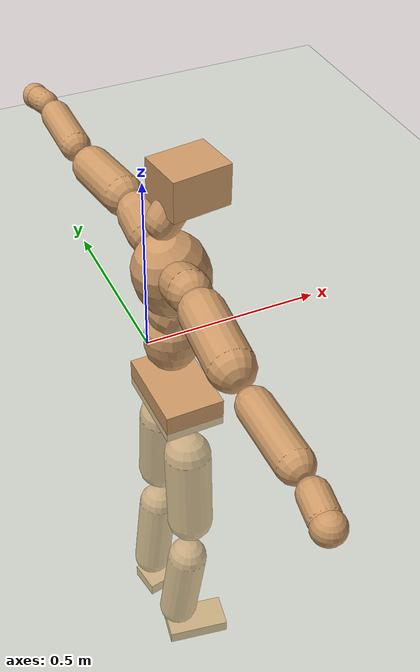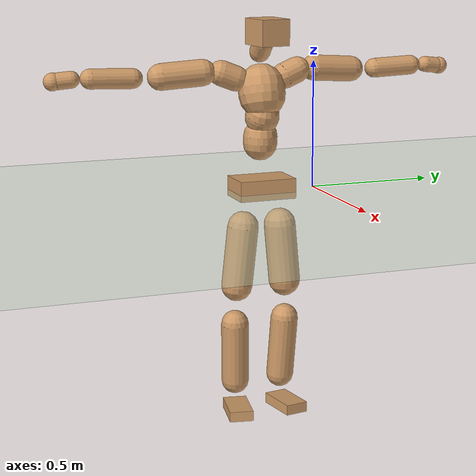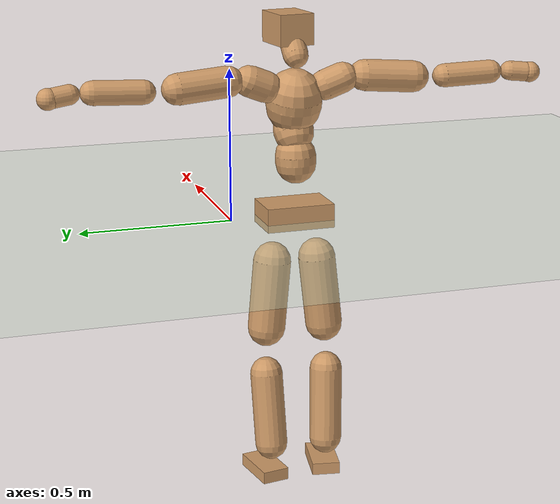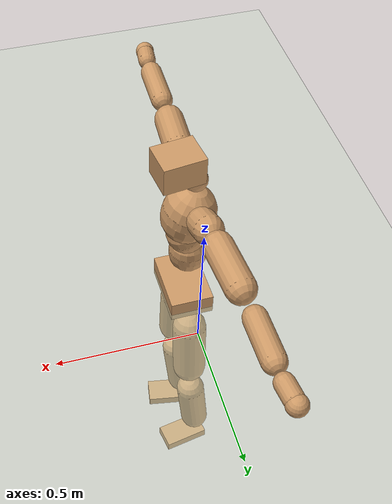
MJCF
<mujoco model="humanoid">
  <compiler coordinate="local" angle="radian"/>
  <default>
    <joint damping="0.0" armature="0.01" stiffness="0.0" limited="true"/>
    <geom conaffinity="1" condim="3" contype="7" margin="0.001" rgba="0.8 0.6 .4 1"/>
  </default>
  <asset>
    <texture type="skybox" builtin="gradient" rgb1=".4 .5 .6" rgb2="0 0 0" width="100" height="100"/>
    <texture builtin="flat" height="1278" mark="cross" markrgb="1 1 1" name="texgeom" random="0.01" rgb1="0.8 0.6 0.4" rgb2="0.8 0.6 0.4" type="cube" width="127"/>
    <texture builtin="checker" height="100" name="texplane" rgb1="0 0 0" rgb2="0.8 0.8 0.8" type="2d" width="100"/>
    <material name="MatPlane" reflectance="0.5" shininess="1" specular="1" texrepeat="60 60" texture="texplane"/>
    <material name="geom" texture="texgeom" texuniform="true"/>
  </asset>
  <worldbody>
    <light cutoff="100" diffuse="1 1 1" dir="-0 0 -1.3" directional="true" exponent="1" pos="0 0 1.3" specular=".1 .1 .1"/>
    <geom conaffinity="1" condim="3" name="floor" pos="0 0 0" rgba="0.8 0.9 0.8 1" size="100 100 .2" type="plane" material="MatPlane"/>
    <body name="Pelvis" pos="-0.0013 -0.2121 0.025">
      <freejoint name="Pelvis"/>
      <geom type="box" contype="1" conaffinity="1" density="500" pos="-0.0067 -0.0001 -0.0125" size="0.0765 0.1137 0.0396" quat="1.0000 0.0000 0.0000 0.0067" name="Pelvis"/>
      <body name="L_Hip" pos="-0.0126 0.0715 -0.0904">
        <joint name="L_Hip_x" type="hinge" pos="0 0 0" axis="1 0 0" stiffness="800" damping="80" armature="0.02" range="-180.0000 180.0000"/>
        <joint name="L_Hip_y" type="hinge" pos="0 0 0" axis="0 1 0" stiffness="800" damping="80" armature="0.02" range="-180.0000 180.0000"/>
        <joint name="L_Hip_z" type="hinge" pos="0 0 0" axis="0 0 1" stiffness="800" damping="80" armature="0.02" range="-180.0000 180.0000"/>
        <geom type="capsule" contype="1" conaffinity="1" density="500" fromto="-0.0003 0.0071 -0.0775 -0.0010 0.0285 -0.3102" size="0.0626" name="L_Hip"/>
        <body name="L_Knee" pos="-0.0013 0.0356 -0.3877">
          <joint name="L_Knee_x" type="hinge" pos="0 0 0" axis="1 0 0" stiffness="800" damping="80" armature="0.02" range="-180.0000 180.0000"/>
          <joint name="L_Knee_y" type="hinge" pos="0 0 0" axis="0 1 0" stiffness="800" damping="80" armature="0.02" range="-180.0000 180.0000"/>
          <joint name="L_Knee_z" type="hinge" pos="0 0 0" axis="0 0 1" stiffness="800" damping="80" armature="0.02" range="-180.0000 180.0000"/>
          <geom type="capsule" contype="1" conaffinity="1" density="500" fromto="-0.0091 -0.0027 -0.0822 -0.0365 -0.0106 -0.3287" size="0.0544" name="L_Knee"/>
          <body name="L_Ankle" pos="-0.0457 -0.0133 -0.4108">
            <joint name="L_Ankle_x" type="hinge" pos="0 0 0" axis="1 0 0" stiffness="800" damping="80" armature="0.02" range="-180.0000 180.0000"/>
            <joint name="L_Ankle_y" type="hinge" pos="0 0 0" axis="0 1 0" stiffness="800" damping="80" armature="0.02" range="-180.0000 180.0000"/>
            <joint name="L_Ankle_z" type="hinge" pos="0 0 0" axis="0 0 1" stiffness="800" damping="80" armature="0.02" range="-180.0000 180.0000"/>
            <geom type="box" contype="1" conaffinity="1" density="500" pos="0.0606 0.0104 -0.0287" size="0.0866 0.0459 0.0206" quat="0.9964 0.0000 0.0000 0.0851" name="L_Ankle"/>
            <body name="L_Toe" pos="0.1212 0.0208 -0.0575">
              <joint name="L_Toe_x" type="hinge" pos="0 0 0" axis="1 0 0" stiffness="500" damping="50" armature="0.02" range="-180.0000 180.0000"/>
              <joint name="L_Toe_y" type="hinge" pos="0 0 0" axis="0 1 0" stiffness="500" damping="50" armature="0.02" range="-180.0000 180.0000"/>
              <joint name="L_Toe_z" type="hinge" pos="0 0 0" axis="0 0 1" stiffness="500" damping="50" armature="0.02" range="-180.0000 180.0000"/>
              <geom type="box" contype="1" conaffinity="1" density="500" pos="0.0000 0.0000 0.0283" size="0.001 0.0023 0.001" quat="0.9958 0.0000 0.0000 0.0915" name="L_Toe"/>
            </body>
          </body>
        </body>
      </body>
      <body name="R_Hip" pos="-0.0088 -0.0689 -0.0891">
        <joint name="R_Hip_x" type="hinge" pos="0 0 0" axis="1 0 0" stiffness="800" damping="80" armature="0.02" range="-180.0000 180.0000"/>
        <joint name="R_Hip_y" type="hinge" pos="0 0 0" axis="0 1 0" stiffness="800" damping="80" armature="0.02" range="-180.0000 180.0000"/>
        <joint name="R_Hip_z" type="hinge" pos="0 0 0" axis="0 0 1" stiffness="800" damping="80" armature="0.02" range="-180.0000 180.0000"/>
        <geom type="capsule" contype="1" conaffinity="1" density="500" fromto="-0.0010 -0.0084 -0.0790 -0.0038 -0.0334 -0.3160" size="0.0618" name="R_Hip"/>
        <body name="R_Knee" pos="-0.0048 -0.0418 -0.395">
          <joint name="R_Knee_x" type="hinge" pos="0 0 0" axis="1 0 0" stiffness="800" damping="80" armature="0.02" range="-180.0000 180.0000"/>
          <joint name="R_Knee_y" type="hinge" pos="0 0 0" axis="0 1 0" stiffness="800" damping="80" armature="0.02" range="-180.0000 180.0000"/>
          <joint name="R_Knee_z" type="hinge" pos="0 0 0" axis="0 0 1" stiffness="800" damping="80" armature="0.02" range="-180.0000 180.0000"/>
          <geom type="capsule" contype="1" conaffinity="1" density="500" fromto="-0.0086 0.0031 -0.0819 -0.0345 0.0125 -0.3274" size="0.0547" name="R_Knee"/>
          <body name="R_Ankle" pos="-0.0431 0.0156 -0.4093">
            <joint name="R_Ankle_x" type="hinge" pos="0 0 0" axis="1 0 0" stiffness="800" damping="80" armature="0.02" range="-180.0000 180.0000"/>
            <joint name="R_Ankle_y" type="hinge" pos="0 0 0" axis="0 1 0" stiffness="800" damping="80" armature="0.02" range="-180.0000 180.0000"/>
            <joint name="R_Ankle_z" type="hinge" pos="0 0 0" axis="0 0 1" stiffness="800" damping="80" armature="0.02" range="-180.0000 180.0000"/>
            <geom type="box" contype="1" conaffinity="1" density="500" pos="0.0624 -0.0104 -0.0247" size="0.0875 0.047 0.0204" quat="0.9966 0.0000 0.0000 -0.0829" name="R_Ankle"/>
            <body name="R_Toe" pos="0.1247 -0.0209 -0.0494">
              <joint name="R_Toe_x" type="hinge" pos="0 0 0" axis="1 0 0" stiffness="500" damping="50" armature="0.02" range="-180.0000 180.0000"/>
              <joint name="R_Toe_y" type="hinge" pos="0 0 0" axis="0 1 0" stiffness="500" damping="50" armature="0.02" range="-180.0000 180.0000"/>
              <joint name="R_Toe_z" type="hinge" pos="0 0 0" axis="0 0 1" stiffness="500" damping="50" armature="0.02" range="-180.0000 180.0000"/>
              <geom type="box" contype="1" conaffinity="1" density="500" pos="0.0000 0.0000 0.0270" size="0.0009 0.0023 0.0011" quat="0.9973 0.0000 0.0000 -0.0740" name="R_Toe"/>
            </body>
          </body>
        </body>
      </body>
      <body name="Torso" pos="-0.019 -0.0032 0.1047">
        <joint name="Torso_x" type="hinge" pos="0 0 0" axis="1 0 0" stiffness="1000" damping="100" armature="0.02" range="-180.0000 180.0000"/>
        <joint name="Torso_y" type="hinge" pos="0 0 0" axis="0 1 0" stiffness="1000" damping="100" armature="0.02" range="-180.0000 180.0000"/>
        <joint name="Torso_z" type="hinge" pos="0 0 0" axis="0 0 1" stiffness="1000" damping="100" armature="0.02" range="-180.0000 180.0000"/>
        <geom type="capsule" contype="1" conaffinity="1" density="500" fromto="-0.0008 0.0025 0.0815 -0.0006 0.0016 0.0543" size="0.0667" name="Torso"/>
        <body name="Spine" pos="-0.0014 0.0041 0.1358">
          <joint name="Spine_x" type="hinge" pos="0 0 0" axis="1 0 0" stiffness="1000" damping="100" armature="0.02" range="-180.0000 180.0000"/>
          <joint name="Spine_y" type="hinge" pos="0 0 0" axis="0 1 0" stiffness="1000" damping="100" armature="0.02" range="-180.0000 180.0000"/>
          <joint name="Spine_z" type="hinge" pos="0 0 0" axis="0 0 1" stiffness="1000" damping="100" armature="0.02" range="-180.0000 180.0000"/>
          <geom type="capsule" contype="1" conaffinity="1" density="500" fromto="0.0154 0.0015 0.0293 0.0103 0.0010 0.0195" size="0.0661" name="Spine"/>
          <body name="Chest" pos="0.0257 0.0024 0.0488">
            <joint name="Chest_x" type="hinge" pos="0 0 0" axis="1 0 0" stiffness="1000" damping="100" armature="0.02" range="-180.0000 180.0000"/>
            <joint name="Chest_y" type="hinge" pos="0 0 0" axis="0 1 0" stiffness="1000" damping="100" armature="0.02" range="-180.0000 180.0000"/>
            <joint name="Chest_z" type="hinge" pos="0 0 0" axis="0 0 1" stiffness="1000" damping="100" armature="0.02" range="-180.0000 180.0000"/>
            <geom type="capsule" contype="1" conaffinity="1" density="500" fromto="-0.0238 -0.0006 0.0894 -0.0158 -0.0004 0.0596" size="0.0912" name="Chest"/>
            <body name="Neck" pos="-0.0481 -0.0021 0.2115">
              <joint name="Neck_x" type="hinge" pos="0 0 0" axis="1 0 0" stiffness="500" damping="50" armature="0.02" range="-180.0000 180.0000"/>
              <joint name="Neck_y" type="hinge" pos="0 0 0" axis="0 1 0" stiffness="500" damping="50" armature="0.02" range="-180.0000 180.0000"/>
              <joint name="Neck_z" type="hinge" pos="0 0 0" axis="0 0 1" stiffness="500" damping="50" armature="0.02" range="-180.0000 180.0000"/>
              <geom type="capsule" contype="1" conaffinity="1" density="500" fromto="0.0094 0.0009 0.0123 0.0376 0.0035 0.0491" size="0.0409" name="Neck"/>
              <body name="Head" pos="0.047 0.0044 0.0613">
                <joint name="Head_x" type="hinge" pos="0 0 0" axis="1 0 0" stiffness="500" damping="50" armature="0.02" range="-180.0000 180.0000"/>
                <joint name="Head_y" type="hinge" pos="0 0 0" axis="0 1 0" stiffness="500" damping="50" armature="0.02" range="-180.0000 180.0000"/>
                <joint name="Head_z" type="hinge" pos="0 0 0" axis="0 0 1" stiffness="500" damping="50" armature="0.02" range="-180.0000 180.0000"/>
                <geom type="box" contype="1" conaffinity="1" density="500" pos="0.0245 0.0032 0.0317" size="0.072 0.0581 0.0505" quat="0.9979 0.0000 0.0000 0.0649" name="Head"/>
              </body>
            </body>
            <body name="L_Thorax" pos="-0.0329 0.0783 0.1193">
              <joint name="L_Thorax_x" type="hinge" pos="0 0 0" axis="1 0 0" stiffness="500" damping="50" armature="0.02" range="-180.0000 180.0000"/>
              <joint name="L_Thorax_y" type="hinge" pos="0 0 0" axis="0 1 0" stiffness="500" damping="50" armature="0.02" range="-180.0000 180.0000"/>
              <joint name="L_Thorax_z" type="hinge" pos="0 0 0" axis="0 0 1" stiffness="500" damping="50" armature="0.02" range="-180.0000 180.0000"/>
              <geom type="capsule" contype="1" conaffinity="1" density="500" fromto="-0.0011 0.0184 0.0075 -0.0044 0.0737 0.0299" size="0.051" name="L_Thorax"/>
              <body name="L_Shoulder" pos="-0.0055 0.0921 0.0374">
                <joint name="L_Shoulder_x" type="hinge" pos="0 0 0" axis="1 0 0" stiffness="500" damping="50" armature="0.02" range="-720.0000 720.0000"/>
                <joint name="L_Shoulder_y" type="hinge" pos="0 0 0" axis="0 1 0" stiffness="500" damping="50" armature="0.02" range="-720.0000 720.0000"/>
                <joint name="L_Shoulder_z" type="hinge" pos="0 0 0" axis="0 0 1" stiffness="500" damping="50" armature="0.02" range="-720.0000 720.0000"/>
                <geom type="capsule" contype="1" conaffinity="1" density="500" fromto="-0.0058 0.0551 -0.0039 -0.0231 0.2205 -0.0155" size="0.0504" name="L_Shoulder"/>
                <body name="L_Elbow" pos="-0.0289 0.2757 -0.0193">
                  <joint name="L_Elbow_x" type="hinge" pos="0 0 0" axis="1 0 0" stiffness="500" damping="50" armature="0.02" range="-720.0000 720.0000"/>
                  <joint name="L_Elbow_y" type="hinge" pos="0 0 0" axis="0 1 0" stiffness="500" damping="50" armature="0.02" range="-720.0000 720.0000"/>
                  <joint name="L_Elbow_z" type="hinge" pos="0 0 0" axis="0 0 1" stiffness="500" damping="50" armature="0.02" range="-720.0000 720.0000"/>
                  <geom type="capsule" contype="1" conaffinity="1" density="500" fromto="0.0002 0.0527 0.0021 0.0007 0.2108 0.0082" size="0.039" name="L_Elbow"/>
                  <body name="L_Wrist" pos="0.0009 0.2635 0.0103">
                    <joint name="L_Wrist_x" type="hinge" pos="0 0 0" axis="1 0 0" stiffness="300" damping="30" armature="0.02" range="-180.0000 180.0000"/>
                    <joint name="L_Wrist_y" type="hinge" pos="0 0 0" axis="0 1 0" stiffness="300" damping="30" armature="0.02" range="-180.0000 180.0000"/>
                    <joint name="L_Wrist_z" type="hinge" pos="0 0 0" axis="0 0 1" stiffness="300" damping="30" armature="0.02" range="-180.0000 180.0000"/>
                    <geom type="capsule" contype="1" conaffinity="1" density="500" fromto="-0.0028 0.0170 -0.0021 -0.0113 0.0681 -0.0085" size="0.0317" name="L_Wrist"/>
                    <body name="L_Hand" pos="-0.0141 0.0852 -0.0107">
                      <joint name="L_Hand_x" type="hinge" pos="0 0 0" axis="1 0 0" stiffness="300" damping="30" armature="0.02" range="-180.0000 180.0000"/>
                      <joint name="L_Hand_y" type="hinge" pos="0 0 0" axis="0 1 0" stiffness="300" damping="30" armature="0.02" range="-180.0000 180.0000"/>
                      <joint name="L_Hand_z" type="hinge" pos="0 0 0" axis="0 0 1" stiffness="300" damping="30" armature="0.02" range="-180.0000 180.0000"/>
                      <geom type="sphere" contype="1" conaffinity="1" density="500" size="0.0341" pos="0.0000 0.0000 0.0000" name="L_Hand"/>
                    </body>
                  </body>
                </body>
              </body>
            </body>
            <body name="R_Thorax" pos="-0.0378 -0.0794 0.1164">
              <joint name="R_Thorax_x" type="hinge" pos="0 0 0" axis="1 0 0" stiffness="500" damping="50" armature="0.02" range="-180.0000 180.0000"/>
              <joint name="R_Thorax_y" type="hinge" pos="0 0 0" axis="0 1 0" stiffness="500" damping="50" armature="0.02" range="-180.0000 180.0000"/>
              <joint name="R_Thorax_z" type="hinge" pos="0 0 0" axis="0 0 1" stiffness="500" damping="50" armature="0.02" range="-180.0000 180.0000"/>
              <geom type="capsule" contype="1" conaffinity="1" density="500" fromto="-0.0018 -0.0193 0.0076 -0.0073 -0.0773 0.0303" size="0.0495" name="R_Thorax"/>
              <body name="R_Shoulder" pos="-0.0091 -0.0966 0.0379">
                <joint name="R_Shoulder_x" type="hinge" pos="0 0 0" axis="1 0 0" stiffness="500" damping="50" armature="0.02" range="-720.0000 720.0000"/>
                <joint name="R_Shoulder_y" type="hinge" pos="0 0 0" axis="0 1 0" stiffness="500" damping="50" armature="0.02" range="-720.0000 720.0000"/>
                <joint name="R_Shoulder_z" type="hinge" pos="0 0 0" axis="0 0 1" stiffness="500" damping="50" armature="0.02" range="-720.0000 720.0000"/>
                <geom type="capsule" contype="1" conaffinity="1" density="500" fromto="-0.0038 -0.0542 -0.0036 -0.0153 -0.2170 -0.0146" size="0.0517" name="R_Shoulder"/>
                <body name="R_Elbow" pos="-0.0192 -0.2712 -0.0182">
                  <joint name="R_Elbow_x" type="hinge" pos="0 0 0" axis="1 0 0" stiffness="500" damping="50" armature="0.02" range="-720.0000 720.0000"/>
                  <joint name="R_Elbow_y" type="hinge" pos="0 0 0" axis="0 1 0" stiffness="500" damping="50" armature="0.02" range="-720.0000 720.0000"/>
                  <joint name="R_Elbow_z" type="hinge" pos="0 0 0" axis="0 0 1" stiffness="500" damping="50" armature="0.02" range="-720.0000 720.0000"/>
                  <geom type="capsule" contype="1" conaffinity="1" density="500" fromto="-0.0008 -0.0539 0.0016 -0.0032 -0.2154 0.0064" size="0.0388" name="R_Elbow"/>
                  <body name="R_Wrist" pos="-0.0041 -0.2693 0.0079">
                    <joint name="R_Wrist_x" type="hinge" pos="0 0 0" axis="1 0 0" stiffness="300" damping="30" armature="0.02" range="-180.0000 180.0000"/>
                    <joint name="R_Wrist_y" type="hinge" pos="0 0 0" axis="0 1 0" stiffness="300" damping="30" armature="0.02" range="-180.0000 180.0000"/>
                    <joint name="R_Wrist_z" type="hinge" pos="0 0 0" axis="0 0 1" stiffness="300" damping="30" armature="0.02" range="-180.0000 180.0000"/>
                    <geom type="capsule" contype="1" conaffinity="1" density="500" fromto="-0.0022 -0.0172 -0.0016 -0.0090 -0.0689 -0.0063" size="0.0323" name="R_Wrist"/>
                    <body name="R_Hand" pos="-0.0112 -0.0861 -0.0079">
                      <joint name="R_Hand_x" type="hinge" pos="0 0 0" axis="1 0 0" stiffness="300" damping="30" armature="0.02" range="-180.0000 180.0000"/>
                      <joint name="R_Hand_y" type="hinge" pos="0 0 0" axis="0 1 0" stiffness="300" damping="30" armature="0.02" range="-180.0000 180.0000"/>
                      <joint name="R_Hand_z" type="hinge" pos="0 0 0" axis="0 0 1" stiffness="300" damping="30" armature="0.02" range="-180.0000 180.0000"/>
                      <geom type="sphere" contype="1" conaffinity="1" density="500" size="0.0342" pos="0.0000 0.0000 0.0000" name="R_Hand"/>
                    </body>
                  </body>
                </body>
              </body>
            </body>
          </body>
        </body>
      </body>
    </body>
  </worldbody>
  <actuator>
    <motor name="L_Hip_x" joint="L_Hip_x" gear="500"/>
    <motor name="L_Hip_y" joint="L_Hip_y" gear="500"/>
    <motor name="L_Hip_z" joint="L_Hip_z" gear="500"/>
    <motor name="L_Knee_x" joint="L_Knee_x" gear="500"/>
    <motor name="L_Knee_y" joint="L_Knee_y" gear="500"/>
    <motor name="L_Knee_z" joint="L_Knee_z" gear="500"/>
    <motor name="L_Ankle_x" joint="L_Ankle_x" gear="500"/>
    <motor name="L_Ankle_y" joint="L_Ankle_y" gear="500"/>
    <motor name="L_Ankle_z" joint="L_Ankle_z" gear="500"/>
    <motor name="L_Toe_x" joint="L_Toe_x" gear="500"/>
    <motor name="L_Toe_y" joint="L_Toe_y" gear="500"/>
    <motor name="L_Toe_z" joint="L_Toe_z" gear="500"/>
    <motor name="R_Hip_x" joint="R_Hip_x" gear="500"/>
    <motor name="R_Hip_y" joint="R_Hip_y" gear="500"/>
    <motor name="R_Hip_z" joint="R_Hip_z" gear="500"/>
    <motor name="R_Knee_x" joint="R_Knee_x" gear="500"/>
    <motor name="R_Knee_y" joint="R_Knee_y" gear="500"/>
    <motor name="R_Knee_z" joint="R_Knee_z" gear="500"/>
    <motor name="R_Ankle_x" joint="R_Ankle_x" gear="500"/>
    <motor name="R_Ankle_y" joint="R_Ankle_y" gear="500"/>
    <motor name="R_Ankle_z" joint="R_Ankle_z" gear="500"/>
    <motor name="R_Toe_x" joint="R_Toe_x" gear="500"/>
    <motor name="R_Toe_y" joint="R_Toe_y" gear="500"/>
    <motor name="R_Toe_z" joint="R_Toe_z" gear="500"/>
    <motor name="Torso_x" joint="Torso_x" gear="500"/>
    <motor name="Torso_y" joint="Torso_y" gear="500"/>
    <motor name="Torso_z" joint="Torso_z" gear="500"/>
    <motor name="Spine_x" joint="Spine_x" gear="500"/>
    <motor name="Spine_y" joint="Spine_y" gear="500"/>
    <motor name="Spine_z" joint="Spine_z" gear="500"/>
    <motor name="Chest_x" joint="Chest_x" gear="500"/>
    <motor name="Chest_y" joint="Chest_y" gear="500"/>
    <motor name="Chest_z" joint="Chest_z" gear="500"/>
    <motor name="Neck_x" joint="Neck_x" gear="500"/>
    <motor name="Neck_y" joint="Neck_y" gear="500"/>
    <motor name="Neck_z" joint="Neck_z" gear="500"/>
    <motor name="Head_x" joint="Head_x" gear="500"/>
    <motor name="Head_y" joint="Head_y" gear="500"/>
    <motor name="Head_z" joint="Head_z" gear="500"/>
    <motor name="L_Thorax_x" joint="L_Thorax_x" gear="500"/>
    <motor name="L_Thorax_y" joint="L_Thorax_y" gear="500"/>
    <motor name="L_Thorax_z" joint="L_Thorax_z" gear="500"/>
    <motor name="L_Shoulder_x" joint="L_Shoulder_x" gear="500"/>
    <motor name="L_Shoulder_y" joint="L_Shoulder_y" gear="500"/>
    <motor name="L_Shoulder_z" joint="L_Shoulder_z" gear="500"/>
    <motor name="L_Elbow_x" joint="L_Elbow_x" gear="500"/>
    <motor name="L_Elbow_y" joint="L_Elbow_y" gear="500"/>
    <motor name="L_Elbow_z" joint="L_Elbow_z" gear="500"/>
    <motor name="L_Wrist_x" joint="L_Wrist_x" gear="500"/>
    <motor name="L_Wrist_y" joint="L_Wrist_y" gear="500"/>
    <motor name="L_Wrist_z" joint="L_Wrist_z" gear="500"/>
    <motor name="L_Hand_x" joint="L_Hand_x" gear="500"/>
    <motor name="L_Hand_y" joint="L_Hand_y" gear="500"/>
    <motor name="L_Hand_z" joint="L_Hand_z" gear="500"/>
    <motor name="R_Thorax_x" joint="R_Thorax_x" gear="500"/>
    <motor name="R_Thorax_y" joint="R_Thorax_y" gear="500"/>
    <motor name="R_Thorax_z" joint="R_Thorax_z" gear="500"/>
    <motor name="R_Shoulder_x" joint="R_Shoulder_x" gear="500"/>
    <motor name="R_Shoulder_y" joint="R_Shoulder_y" gear="500"/>
    <motor name="R_Shoulder_z" joint="R_Shoulder_z" gear="500"/>
    <motor name="R_Elbow_x" joint="R_Elbow_x" gear="500"/>
    <motor name="R_Elbow_y" joint="R_Elbow_y" gear="500"/>
    <motor name="R_Elbow_z" joint="R_Elbow_z" gear="500"/>
    <motor name="R_Wrist_x" joint="R_Wrist_x" gear="500"/>
    <motor name="R_Wrist_y" joint="R_Wrist_y" gear="500"/>
    <motor name="R_Wrist_z" joint="R_Wrist_z" gear="500"/>
    <motor name="R_Hand_x" joint="R_Hand_x" gear="500"/>
    <motor name="R_Hand_y" joint="R_Hand_y" gear="500"/>
    <motor name="R_Hand_z" joint="R_Hand_z" gear="500"/>
  </actuator>
  <contact>
    <exclude body1="Torso" body2="Chest"/>
    <exclude body1="Head" body2="Chest"/>
    <exclude body1="R_Knee" body2="R_Toe"/>
    <exclude body1="R_Knee" body2="L_Ankle"/>
    <exclude body1="R_Knee" body2="L_Toe"/>
    <exclude body1="L_Knee" body2="L_Toe"/>
    <exclude body1="L_Knee" body2="R_Ankle"/>
    <exclude body1="L_Knee" body2="R_Toe"/>
    <exclude body1="L_Shoulder" body2="Chest"/>
    <exclude body1="R_Shoulder" body2="Chest"/>
  </contact>
  <sensor/>
  <size njmax="700" nconmax="700"/>
</mujoco>
